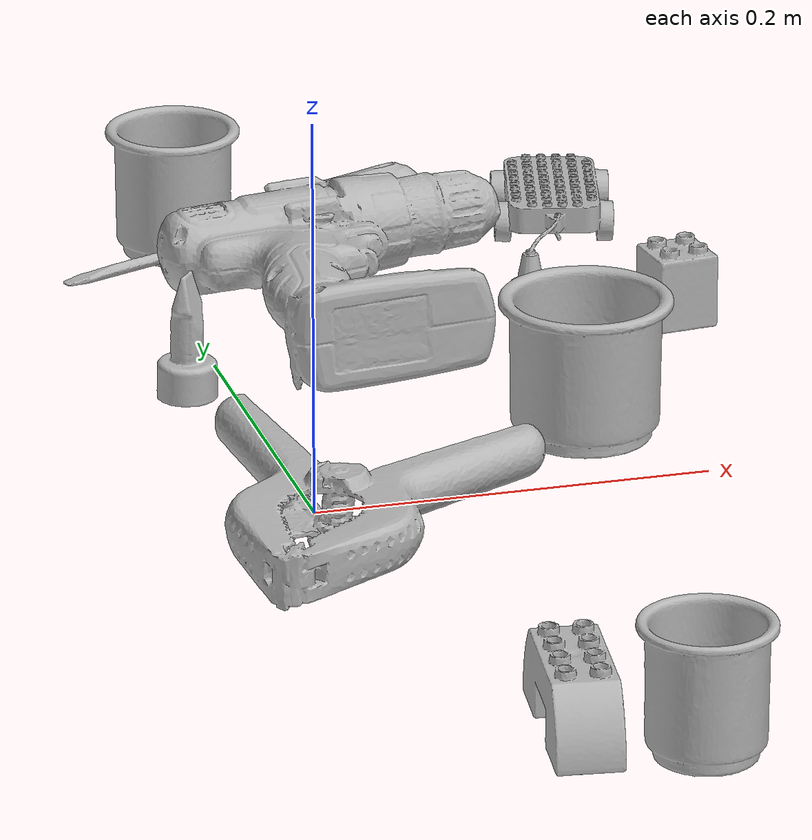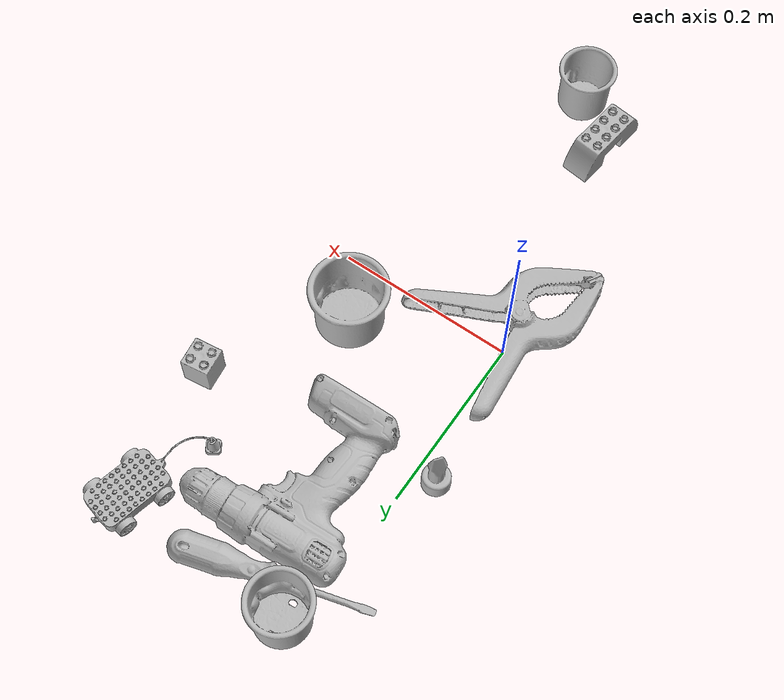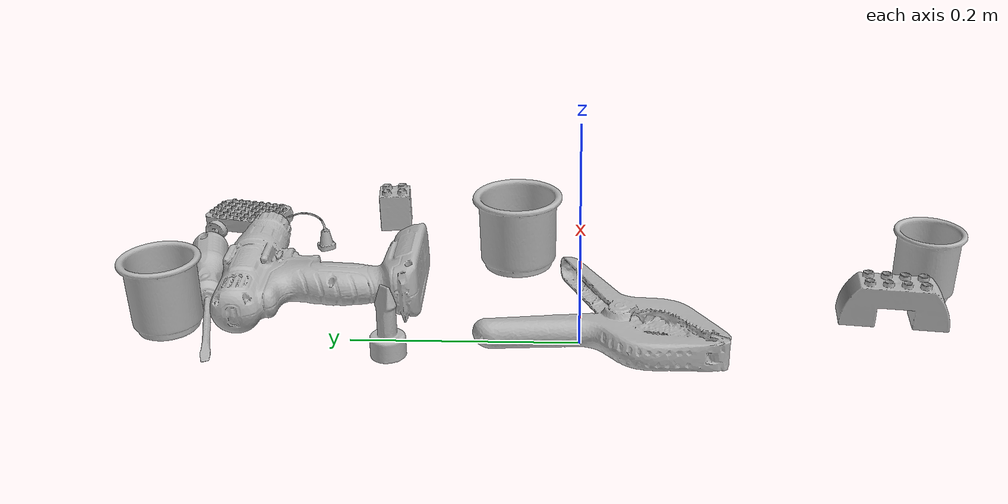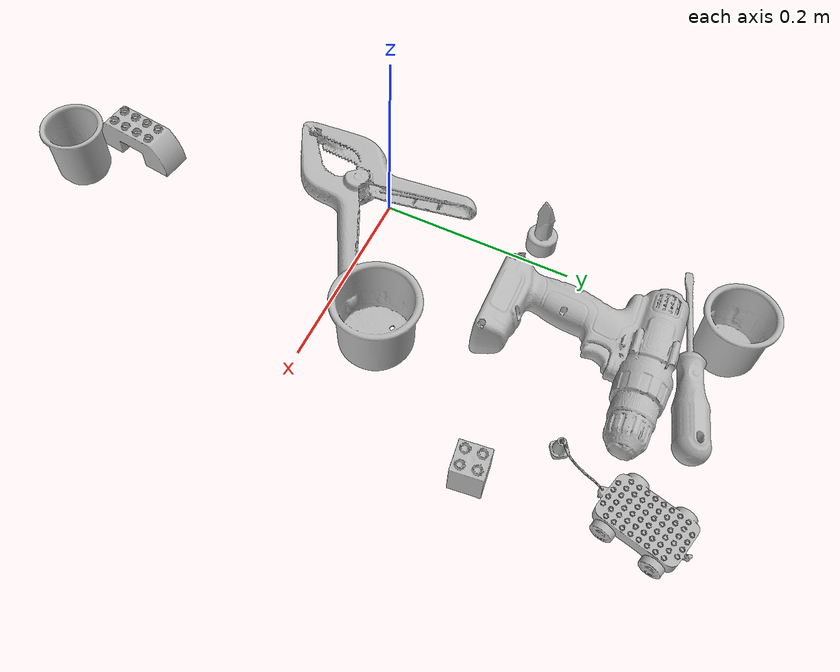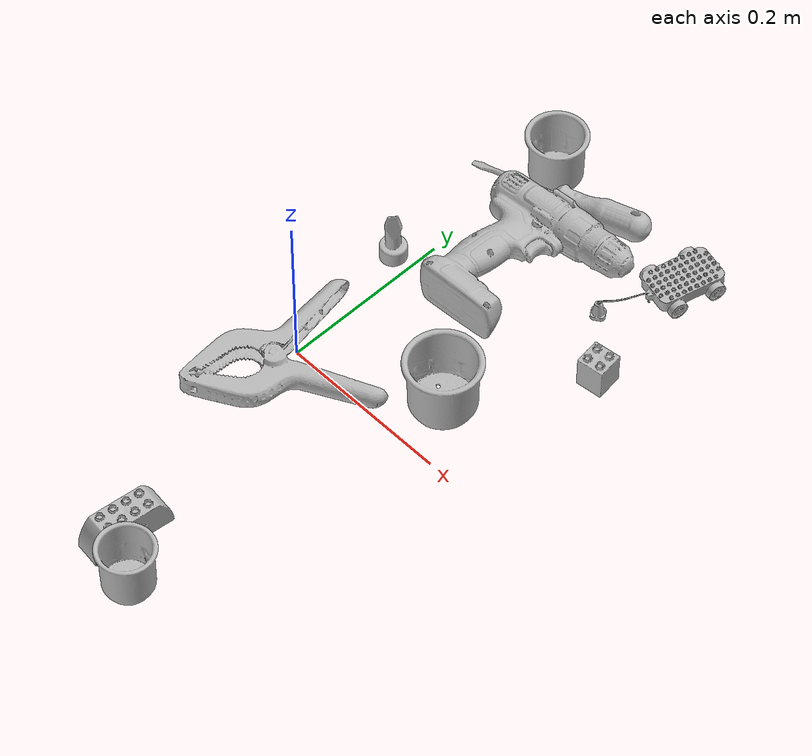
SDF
<sdf version="1.4">
  <world name="default">
    <light name="light1" type="point">
      <pose>0 0 1 0 0 0</pose>
      <diffuse>3 3 3 1</diffuse>
      <specular>3 3 3 1</specular>
    </light>
    <light name="light2" type="point">
      <pose>0 0.5 2 0 0 0</pose>
      <diffuse>1 1 1 1</diffuse>
      <specular>1 1 1 1</specular>
    </light>
    <light name="light3" type="point">
      <pose>0 0.5 2 0 0 0</pose>
      <diffuse>3 3 3 1</diffuse>
      <specular>3 3 3 1</specular>
    </light>
    <scene>
      <ambient>0.7 0.7 0.7</ambient>
    </scene>
    <model name="cup1">
      <link name="link_cup1">
        <collision name="default">
          <geometry>
            <mesh>
              <uri>model://d_cups/collision_meshes/collision.obj</uri>
              <scale>1.0 1.0 1.0</scale>
            </mesh>
          </geometry>
          <surface>
            <friction>
              <ode>
                <mu>0.5</mu>
                <mu2>0.5</mu2>
              </ode>
            </friction>
          <contact>
        <ode>
            <max_vel>0</max_vel>
            <min_depth>0.0001</min_depth>
            <kp>1e8</kp>
        </ode>
    </contact></surface>
        </collision>
        <visual name="default">
          <geometry>
            <mesh>
              <uri>model://d_cups/visual_meshes/visual.dae</uri>
              <scale>1.0 1.0 1.0</scale>
            </mesh>
          </geometry>
        </visual>
        <inertial>
          <mass>0.04943045228719711</mass>
          <pose>0.0008068052702583373 0.0019117395859211683 -0.0022666507866233587 0.2401104468273406 -0.24710716259907536 0.594298245500967</pose>
          <inertia>
            <ixx>4.1384912e-05</ixx>
            <iyy>4.1265153e-05</iyy>
            <izz>3.7460377e-05</izz>
            <ixy>0</ixy>
            <ixz>0</ixz>
            <iyz>0</iyz>
          </inertia>
        </inertial>
      </link>
      <pose>0.01915421336889267 0.36535727977752686 0.03465908765792847 2.463337259598727e-05 4.7272417967419465e-06 -2.1128551600600307</pose>
    </model>
    <model name="cup2">
      <link name="link_cup2">
        <collision name="default">
          <geometry>
            <mesh>
              <uri>model://c_cups/collision_meshes/collision.obj</uri>
              <scale>1.0 1.0 1.0</scale>
            </mesh>
          </geometry>
          <surface>
            <friction>
              <ode>
                <mu>0.5</mu>
                <mu2>0.5</mu2>
              </ode>
            </friction>
          <contact>
        <ode>
            <max_vel>0</max_vel>
            <min_depth>0.0001</min_depth>
            <kp>1e8</kp>
        </ode>
    </contact></surface>
        </collision>
        <visual name="default">
          <geometry>
            <mesh>
              <uri>model://c_cups/visual_meshes/visual.dae</uri>
              <scale>1.0 1.0 1.0</scale>
            </mesh>
          </geometry>
        </visual>
        <inertial>
          <mass>0.02161477506160736</mass>
          <pose>0.0007237254758365452 0.002015391131862998 -0.0012750980677083135 0.3021577101392444 0.013461522825774588 -0.08771822086046323</pose>
          <inertia>
            <ixx>1.607462e-05</ixx>
            <iyy>1.5790554e-05</iyy>
            <izz>1.4215883e-05</izz>
            <ixy>0</ixy>
            <ixz>0</ixz>
            <iyz>0</iyz>
          </inertia>
        </inertial>
      </link>
      <pose>0.09809034317731857 -0.32097485661506653 0.03345901146531105 6.510165647677524e-07 -2.528938480925971e-08 -0.6166450026945833</pose>
    </model>
    <model name="cup3">
      <link name="link_cup3">
        <collision name="default">
          <geometry>
            <mesh>
              <uri>model://g_cups/collision_meshes/collision.obj</uri>
              <scale>1.0 1.0 1.0</scale>
            </mesh>
          </geometry>
          <surface>
            <friction>
              <ode>
                <mu>0.5</mu>
                <mu2>0.5</mu2>
              </ode>
            </friction>
          <contact>
        <ode>
            <max_vel>0</max_vel>
            <min_depth>0.0001</min_depth>
            <kp>1e8</kp>
        </ode>
    </contact></surface>
        </collision>
        <visual name="default">
          <geometry>
            <mesh>
              <uri>model://g_cups/visual_meshes/visual.dae</uri>
              <scale>1.0 1.0 1.0</scale>
            </mesh>
          </geometry>
        </visual>
        <inertial>
          <mass>0.04413851350545883</mass>
          <pose>-0.0007946275873109698 -4.206433004583232e-05 -0.002132937777787447 -0.2138199678327952 -0.31410615416341514 0.3111935262320568</pose>
          <inertia>
            <ixx>5.151955e-05</ixx>
            <iyy>5.1344283e-05</iyy>
            <izz>5.3365377e-05</izz>
            <ixy>0</ixy>
            <ixz>0</ixz>
            <iyz>0</iyz>
          </inertia>
        </inertial>
      </link>
      <pose>0.15486380457878113 0.0617910772562027 0.03719664737582207 -0.0001451570374875217 5.956874152651791e-05 -2.8292888622547774</pose>
    </model>
    <model name="toy1">
      <link name="link_toy1">
        <collision name="default">
          <geometry>
            <mesh>
              <uri>model://e_lego_duplo/collision_meshes/collision.obj</uri>
              <scale>1.0 1.0 1.0</scale>
            </mesh>
          </geometry>
          <surface>
            <friction>
              <ode>
                <mu>0.5</mu>
                <mu2>0.5</mu2>
              </ode>
            </friction>
          <contact>
        <ode>
            <max_vel>0</max_vel>
            <min_depth>0.0001</min_depth>
            <kp>1e8</kp>
        </ode>
    </contact></surface>
        </collision>
        <visual name="default">
          <geometry>
            <mesh>
              <uri>model://e_lego_duplo/visual_meshes/visual.dae</uri>
              <scale>1.0 1.0 1.0</scale>
            </mesh>
          </geometry>
        </visual>
        <inertial>
          <mass>0.08806774020195007</mass>
          <pose>0.0003256051568314433 0.00023485405836254358 0.0019521453650668263 -0.02256777049150226 -6.824370740412915e-05 -0.00762515400873393</pose>
          <inertia>
            <ixx>1.8365032e-05</ixx>
            <iyy>7.537481e-05</iyy>
            <izz>7.3399904e-05</izz>
            <ixy>0</ixy>
            <ixz>0</ixz>
            <iyz>0</iyz>
          </inertia>
        </inertial>
      </link>
      <pose>0.04829045385122299 -0.2802097797393799 0.02180900052189827 1.0161646788435272e-07 -3.638045981975086e-08 1.4507520340744224</pose>
    </model>
    <model name="toy2">
      <link name="link_toy2">
        <collision name="default">
          <geometry>
            <mesh>
              <uri>model://b_lego_duplo/collision_meshes/collision.obj</uri>
              <scale>1.0 1.0 1.0</scale>
            </mesh>
          </geometry>
          <surface>
            <friction>
              <ode>
                <mu>0.5</mu>
                <mu2>0.5</mu2>
              </ode>
            </friction>
          <contact>
        <ode>
            <max_vel>0</max_vel>
            <min_depth>0.0001</min_depth>
            <kp>1e8</kp>
        </ode>
    </contact></surface>
        </collision>
        <visual name="default">
          <geometry>
            <mesh>
              <uri>model://b_lego_duplo/visual_meshes/visual.dae</uri>
              <scale>1.0 1.0 1.0</scale>
            </mesh>
          </geometry>
        </visual>
        <inertial>
          <mass>0.04734363779425621</mass>
          <pose>-0.00011053025809815153 -9.15254986466607e-06 0.0019294298253953457 -0.03749543151759021 -0.02635344242756168 0.4519151706388912</pose>
          <inertia>
            <ixx>9.689229e-06</ixx>
            <iyy>9.754364e-06</iyy>
            <izz>8.632791e-06</izz>
            <ixy>0</ixy>
            <ixz>0</ixz>
            <iyz>0</iyz>
          </inertia>
        </inertial>
      </link>
      <pose>0.24459874629974365 0.19836606085300446 0.021814599633216858 0.00014552282483981514 0.00017912001704927644 -1.4442999592573846</pose>
    </model>
    <model name="toy3">
      <link name="link_toy3">
        <collision name="default">
          <geometry>
            <mesh>
              <uri>model://g_lego_duplo/collision_meshes/collision.obj</uri>
              <scale>0.5 0.5 0.5</scale>
            </mesh>
          </geometry>
          <surface>
            <friction>
              <ode>
                <mu>0.5</mu>
                <mu2>0.5</mu2>
              </ode>
            </friction>
          <contact>
        <ode>
            <max_vel>0</max_vel>
            <min_depth>0.0001</min_depth>
            <kp>1e8</kp>
        </ode>
    </contact></surface>
        </collision>
        <visual name="default">
          <geometry>
            <mesh>
              <uri>model://g_lego_duplo/visual_meshes/visual.dae</uri>
              <scale>0.5 0.5 0.5</scale>
            </mesh>
          </geometry>
        </visual>
        <inertial>
          <mass>0.0549229197204113</mass>
          <pose>-0.02502383477985859 0.0008777315961197019 0.0019403378246352077 0.010963030367844774 0.03810824354215502 -0.09653013034360637</pose>
          <inertia>
            <ixx>1.989599e-05</ixx>
            <iyy>6.0152015e-05</iyy>
            <izz>7.525238e-05</izz>
            <ixy>0</ixy>
            <ixz>0</ixz>
            <iyz>0</iyz>
          </inertia>
        </inertial>
      </link>
      <pose>0.2130189836025238 0.32173535227775574 0.014836639165878296 -0.0013744097755616384 -0.005045411606513568 -1.8095544758318807</pose>
    </model>
    <model name="toy4">
      <link name="link_toy4">
        <collision name="default">
          <geometry>
            <mesh>
              <uri>model://e_toy_airplane/collision_meshes/collision.obj</uri>
              <scale>1.0 1.0 1.0</scale>
            </mesh>
          </geometry>
          <surface>
            <friction>
              <ode>
                <mu>0.5</mu>
                <mu2>0.5</mu2>
              </ode>
            </friction>
          <contact>
        <ode>
            <max_vel>0</max_vel>
            <min_depth>0.0001</min_depth>
            <kp>1e8</kp>
        </ode>
    </contact></surface>
        </collision>
        <visual name="default">
          <geometry>
            <mesh>
              <uri>model://e_toy_airplane/visual_meshes/visual.dae</uri>
              <scale>1.0 1.0 1.0</scale>
            </mesh>
          </geometry>
        </visual>
        <inertial>
          <mass>0.02949252724647522</mass>
          <pose>0.0001174047210952267 -2.248294731543865e-05 -0.011187205091118813 0.00551852159670192 0.009228270522190251 0.15041692690710914</pose>
          <inertia>
            <ixx>9.0014555e-06</ixx>
            <iyy>8.909378e-06</iyy>
            <izz>2.7052915e-06</izz>
            <ixy>0</ixy>
            <ixz>0</ixz>
            <iyz>0</iyz>
          </inertia>
        </inertial>
      </link>
      <pose>-0.023435156792402267 0.1622791439294815 0.03321108594536781 1.1916993705567292e-05 -0.00021370902132885873 -0.7916605822092728</pose>
    </model>
    <model name="hardware1">
      <link name="link_hardware1">
        <collision name="default">
          <geometry>
            <mesh>
              <uri>model://power_drill/collision_meshes/collision.obj</uri>
              <scale>1.0 1.0 1.0</scale>
            </mesh>
          </geometry>
          <surface>
            <friction>
              <ode>
                <mu>0.5</mu>
                <mu2>0.5</mu2>
              </ode>
            </friction>
          <contact>
        <ode>
            <max_vel>0</max_vel>
            <min_depth>0.0001</min_depth>
            <kp>1e8</kp>
        </ode>
    </contact></surface>
        </collision>
        <visual name="default">
          <geometry>
            <mesh>
              <uri>model://power_drill/visual_meshes/visual.dae</uri>
              <scale>1.0 1.0 1.0</scale>
            </mesh>
          </geometry>
        </visual>
        <inertial>
          <mass>0.4622694253921509</mass>
          <pose>-0.014780544675886631 0.014369423501193523 0.0012414170196279883 0.0046091653592492164 0.00407302392026691 -0.1836269379856391</pose>
          <inertia>
            <ixx>0.0018837696</ixx>
            <iyy>0.00074116525</iyy>
            <izz>0.0024878501</izz>
            <ixy>0</ixy>
            <ixz>0</ixz>
            <iyz>0</iyz>
          </inertia>
        </inertial>
      </link>
      <pose>0.09250418841838837 0.23860077559947968 0.02731243707239628 -0.030305532126043727 -0.04725264808784508 0.052889016233493215</pose>
    </model>
    <model name="hardware2">
      <link name="link_hardware2">
        <collision name="default">
          <geometry>
            <mesh>
              <uri>model://flat_screwdriver/collision_meshes/collision.obj</uri>
              <scale>1.0 1.0 1.0</scale>
            </mesh>
          </geometry>
          <surface>
            <friction>
              <ode>
                <mu>0.5</mu>
                <mu2>0.5</mu2>
              </ode>
            </friction>
          <contact>
        <ode>
            <max_vel>0</max_vel>
            <min_depth>0.0001</min_depth>
            <kp>1e8</kp>
        </ode>
    </contact></surface>
        </collision>
        <visual name="default">
          <geometry>
            <mesh>
              <uri>model://flat_screwdriver/visual_meshes/visual.dae</uri>
              <scale>1.0 1.0 1.0</scale>
            </mesh>
          </geometry>
        </visual>
        <inertial>
          <mass>0.07028686255216599</mass>
          <pose>-0.0489187091588974 -0.0006576801533810794 -0.0006140916375443339 -0.5613212056153659 -0.0032337294395619258 0.006982277044942129</pose>
          <inertia>
            <ixx>8.3043415e-06</ixx>
            <iyy>0.00010542549</iyy>
            <izz>0.00010537667</izz>
            <ixy>0</ixy>
            <ixz>0</ixz>
            <iyz>0</iyz>
          </inertia>
        </inertial>
      </link>
      <pose>0.053137172013521194 0.3396393060684204 0.015242643654346466 0.018275649422302146 0.057641498720111324 -2.8646711241949494</pose>
    </model>
    <model name="hardware3">
      <link name="link_hardware3">
        <collision name="default">
          <geometry>
            <mesh>
              <uri>model://extra_large_clamp/collision_meshes/collision.obj</uri>
              <scale>1.0 1.0 1.0</scale>
            </mesh>
          </geometry>
          <surface>
            <friction>
              <ode>
                <mu>0.5</mu>
                <mu2>0.5</mu2>
              </ode>
            </friction>
          <contact>
        <ode>
            <max_vel>0</max_vel>
            <min_depth>0.0001</min_depth>
            <kp>1e8</kp>
        </ode>
    </contact></surface>
        </collision>
        <visual name="default">
          <geometry>
            <mesh>
              <uri>model://extra_large_clamp/visual_meshes/visual.dae</uri>
              <scale>1.0 1.0 1.0</scale>
            </mesh>
          </geometry>
        </visual>
        <inertial>
          <mass>0.19051048159599304</mass>
          <pose>0.0032320222817361355 -7.615413051098585e-05 0.0003172157157678157 0.013786989477745152 -0.0005066809054022428 -0.0008935736893705532</pose>
          <inertia>
            <ixx>0.00028954487</ixx>
            <iyy>0.0004985067</iyy>
            <izz>0.0007616155</izz>
            <ixy>0</ixy>
            <ixz>0</ixz>
            <iyz>0</iyz>
          </inertia>
        </inertial>
      </link>
      <pose>0.0034631374292075634 -0.03467629477381706 0.018067967146635056 -0.0243720647627747 0.000102171806669101 -2.068068932842884</pose>
    </model>
  <physics type="ode">
      <max_contacts>50</max_contacts>
      <ode>
        <solver>
          <type>quick</type>
          <iters>75</iters>
        </solver>
        <constraints>
          <contact_max_correcting_vel>0</contact_max_correcting_vel>
          <contact_surface_layer>0</contact_surface_layer>
        </constraints>
      </ode>
    </physics></world>
</sdf>
